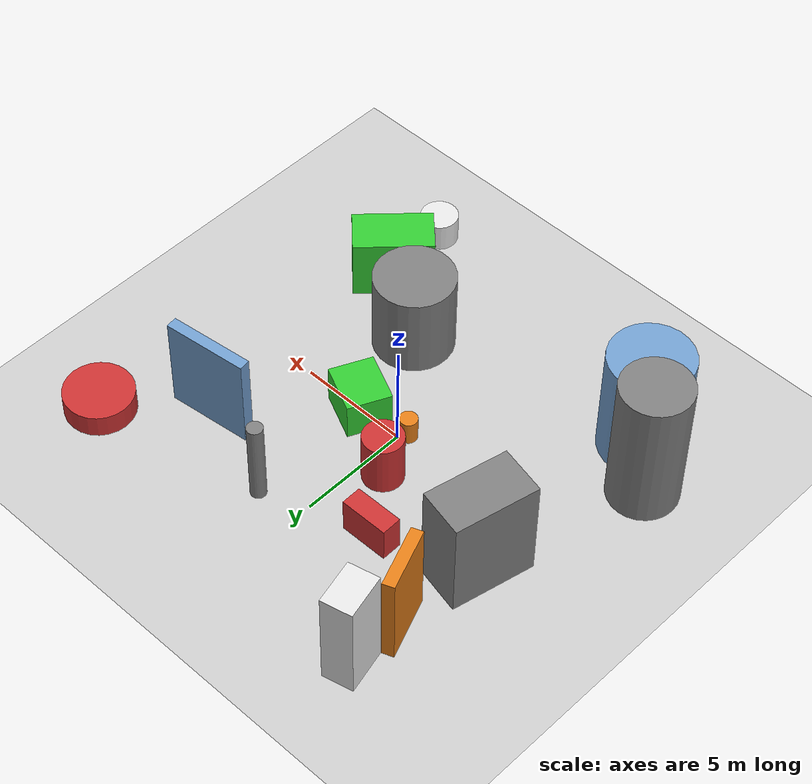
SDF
<?xml version='1.0'?>
<sdf version='1.6'>
  <world name='default'>
    <!-- Sun light -->
    <light name='sun' type='directional'>
      <cast_shadows>1</cast_shadows>
      <pose>0 0 10 0 0 0</pose>
      <diffuse>0.8 0.8 0.8 1</diffuse>
      <specular>0.2 0.2 0.2 1</specular>
      <attenuation>
        <range>1000</range>
        <constant>0.9</constant>
        <linear>0.01</linear>
        <quadratic>0.001</quadratic>
      </attenuation>
      <direction>-0.5 0.1 -0.9</direction>
    </light>

    <!-- Ground plane -->
    <model name='ground_plane'>
      <static>1</static>
      <link name='link'>
        <collision name='collision'>
          <geometry>
            <plane>
              <normal>0 0 1</normal>
              <size>100 100</size>
            </plane>
          </geometry>
          <surface>
            <contact>
              <collide_bitmask>65535</collide_bitmask>
              <ode/>
            </contact>
            <friction>
              <ode>
                <mu>100</mu>
                <mu2>50</mu2>
              </ode>
              <torsional><ode/></torsional>
            </friction>
            <bounce/>
          </surface>
          <max_contacts>10</max_contacts>
        </collision>
        <visual name='visual'>
          <cast_shadows>0</cast_shadows>
          <geometry>
            <plane>
              <normal>0 0 1</normal>
              <size>100 100</size>
            </plane>
          </geometry>
          <material>
            <script>
              <uri>file://media/materials/scripts/gazebo.material</uri>
              <n>Gazebo/Grey</n>
            </script>
          </material>
        </visual>
      </link>
    </model>

    <!-- Environment -->
    <magnetic_field>6e-06 2.3e-05 -4.2e-05</magnetic_field>
    <atmosphere type='adiabatic'/>
    <physics name='default_physics' default='0' type='ode'>
      <gravity>0 0 -9.8</gravity>
      <max_step_size>0.004</max_step_size>
      <real_time_factor>1</real_time_factor>
      <real_time_update_rate>250</real_time_update_rate>
    </physics>
    <scene>
      <ambient>0.4 0.4 0.4 1</ambient>
      <background>0.7 0.7 0.7 1</background>
      <shadows>1</shadows>
    </scene>
    <wind/>
    <spherical_coordinates>
      <surface_model>EARTH_WGS84</surface_model>
      <latitude_deg>0</latitude_deg>
      <longitude_deg>0</longitude_deg>
      <elevation>0</elevation>
      <heading_deg>0</heading_deg>
    </spherical_coordinates>

    <!-- ============ OBSTACLES (15) ============ -->
    <model name='obs_00'>
      <static>1</static>
      <link name='link'>
        <visual name='visual'>
          <geometry>
            <cylinder>
              <radius>0.3946</radius>
              <length>1.1159</length>
            </cylinder>
          </geometry>
          <material>
            <script>
              <n>Gazebo/Orange</n>
              <uri>file://media/materials/scripts/gazebo.material</uri>
            </script>
            <ambient>0.9 0.5 0.1 1</ambient>
          </material>
        </visual>
        <collision name='collision'>
          <geometry>
            <cylinder>
              <radius>0.3946</radius>
              <length>1.1159</length>
            </cylinder>
          </geometry>
          <max_contacts>10</max_contacts>
          <surface>
            <contact><ode/></contact>
            <bounce/>
            <friction>
              <ode><mu>1</mu><mu2>1</mu2></ode>
              <torsional><ode/></torsional>
            </friction>
          </surface>
        </collision>
      </link>
      <pose>-0.2628 -0.3578 0.5580 0 0 1.1882</pose>
    </model>

    <model name='obs_01'>
      <static>1</static>
      <link name='link'>
        <visual name='visual'>
          <geometry>
            <box>
              <size>2.2653 1.9693 1.7478</size>
            </box>
          </geometry>
          <material>
            <script>
              <n>Gazebo/Green</n>
              <uri>file://media/materials/scripts/gazebo.material</uri>
            </script>
            <ambient>0.2 0.8 0.2 1</ambient>
          </material>
        </visual>
        <collision name='collision'>
          <geometry>
            <box>
              <size>2.2653 1.9693 1.7478</size>
            </box>
          </geometry>
          <max_contacts>10</max_contacts>
          <surface>
            <contact><ode/></contact>
            <bounce/>
            <friction>
              <ode><mu>1</mu><mu2>1</mu2></ode>
              <torsional><ode/></torsional>
            </friction>
          </surface>
        </collision>
      </link>
      <pose>2.0842 0.0367 0.8739 0 0 2.7005</pose>
    </model>

    <model name='obs_02'>
      <static>1</static>
      <link name='link'>
        <visual name='visual'>
          <geometry>
            <cylinder>
              <radius>1.8180</radius>
              <length>5.1987</length>
            </cylinder>
          </geometry>
          <material>
            <script>
              <n>Gazebo/Blue</n>
              <uri>file://media/materials/scripts/gazebo.material</uri>
            </script>
            <ambient>0.447 0.624 0.812 1</ambient>
          </material>
        </visual>
        <collision name='collision'>
          <geometry>
            <cylinder>
              <radius>1.8180</radius>
              <length>5.1987</length>
            </cylinder>
          </geometry>
          <max_contacts>10</max_contacts>
          <surface>
            <contact><ode/></contact>
            <bounce/>
            <friction>
              <ode><mu>1</mu><mu2>1</mu2></ode>
              <torsional><ode/></torsional>
            </friction>
          </surface>
        </collision>
      </link>
      <pose>-7.2206 -6.6879 2.5993 0 0 0.5574</pose>
    </model>

    <model name='obs_03'>
      <static>1</static>
      <link name='link'>
        <visual name='visual'>
          <geometry>
            <box>
              <size>0.9113 2.1878 1.6516</size>
            </box>
          </geometry>
          <material>
            <script>
              <n>Gazebo/Red</n>
              <uri>file://media/materials/scripts/gazebo.material</uri>
            </script>
            <ambient>0.8 0.2 0.2 1</ambient>
          </material>
        </visual>
        <collision name='collision'>
          <geometry>
            <box>
              <size>0.9113 2.1878 1.6516</size>
            </box>
          </geometry>
          <max_contacts>10</max_contacts>
          <surface>
            <contact><ode/></contact>
            <bounce/>
            <friction>
              <ode><mu>1</mu><mu2>1</mu2></ode>
              <torsional><ode/></torsional>
            </friction>
          </surface>
        </collision>
      </link>
      <pose>-2.7555 4.3461 0.8258 0 0 1.5813</pose>
    </model>

    <model name='obs_04'>
      <static>1</static>
      <link name='link'>
        <visual name='visual'>
          <geometry>
            <box>
              <size>0.5042 3.7821 4.3928</size>
            </box>
          </geometry>
          <material>
            <script>
              <n>Gazebo/Blue</n>
              <uri>file://media/materials/scripts/gazebo.material</uri>
            </script>
            <ambient>0.447 0.624 0.812 1</ambient>
          </material>
        </visual>
        <collision name='collision'>
          <geometry>
            <box>
              <size>0.5042 3.7821 4.3928</size>
            </box>
          </geometry>
          <max_contacts>10</max_contacts>
          <surface>
            <contact><ode/></contact>
            <bounce/>
            <friction>
              <ode><mu>1</mu><mu2>1</mu2></ode>
              <torsional><ode/></torsional>
            </friction>
          </surface>
        </collision>
      </link>
      <pose>6.2235 4.4051 2.1964 0 0 1.6942</pose>
    </model>

    <model name='obs_05'>
      <static>1</static>
      <link name='link'>
        <visual name='visual'>
          <geometry>
            <cylinder>
              <radius>0.8352</radius>
              <length>1.3041</length>
            </cylinder>
          </geometry>
          <material>
            <script>
              <n>Gazebo/White</n>
              <uri>file://media/materials/scripts/gazebo.material</uri>
            </script>
            <ambient>0.9 0.9 0.9 1</ambient>
          </material>
        </visual>
        <collision name='collision'>
          <geometry>
            <cylinder>
              <radius>0.8352</radius>
              <length>1.3041</length>
            </cylinder>
          </geometry>
          <max_contacts>10</max_contacts>
          <surface>
            <contact><ode/></contact>
            <bounce/>
            <friction>
              <ode><mu>1</mu><mu2>1</mu2></ode>
              <torsional><ode/></torsional>
            </friction>
          </surface>
        </collision>
      </link>
      <pose>6.6673 -9.5511 0.6520 0 0 1.6401</pose>
    </model>

    <model name='obs_06'>
      <static>1</static>
      <link name='link'>
        <visual name='visual'>
          <geometry>
            <box>
              <size>3.7845 2.1874 4.8434</size>
            </box>
          </geometry>
          <material>
            <script>
              <n>Gazebo/Grey</n>
              <uri>file://media/materials/scripts/gazebo.material</uri>
            </script>
            <ambient>0.5 0.5 0.5 1</ambient>
          </material>
        </visual>
        <collision name='collision'>
          <geometry>
            <box>
              <size>3.7845 2.1874 4.8434</size>
            </box>
          </geometry>
          <max_contacts>10</max_contacts>
          <surface>
            <contact><ode/></contact>
            <bounce/>
            <friction>
              <ode><mu>1</mu><mu2>1</mu2></ode>
              <torsional><ode/></torsional>
            </friction>
          </surface>
        </collision>
      </link>
      <pose>-6.7774 2.5908 2.4217 0 0 1.3476</pose>
    </model>

    <model name='obs_07'>
      <static>1</static>
      <link name='link'>
        <visual name='visual'>
          <geometry>
            <cylinder>
              <radius>1.5216</radius>
              <length>6.3308</length>
            </cylinder>
          </geometry>
          <material>
            <script>
              <n>Gazebo/Grey</n>
              <uri>file://media/materials/scripts/gazebo.material</uri>
            </script>
            <ambient>0.5 0.5 0.5 1</ambient>
          </material>
        </visual>
        <collision name='collision'>
          <geometry>
            <cylinder>
              <radius>1.5216</radius>
              <length>6.3308</length>
            </cylinder>
          </geometry>
          <max_contacts>10</max_contacts>
          <surface>
            <contact><ode/></contact>
            <bounce/>
            <friction>
              <ode><mu>1</mu><mu2>1</mu2></ode>
              <torsional><ode/></torsional>
            </friction>
          </surface>
        </collision>
      </link>
      <pose>-8.8818 -4.8348 3.1654 0 0 1.8505</pose>
    </model>

    <model name='obs_08'>
      <static>1</static>
      <link name='link'>
        <visual name='visual'>
          <geometry>
            <box>
              <size>1.9892 1.3908 4.8293</size>
            </box>
          </geometry>
          <material>
            <script>
              <n>Gazebo/White</n>
              <uri>file://media/materials/scripts/gazebo.material</uri>
            </script>
            <ambient>0.9 0.9 0.9 1</ambient>
          </material>
        </visual>
        <collision name='collision'>
          <geometry>
            <box>
              <size>1.9892 1.3908 4.8293</size>
            </box>
          </geometry>
          <max_contacts>10</max_contacts>
          <surface>
            <contact><ode/></contact>
            <bounce/>
            <friction>
              <ode><mu>1</mu><mu2>1</mu2></ode>
              <torsional><ode/></torsional>
            </friction>
          </surface>
        </collision>
      </link>
      <pose>-6.3992 9.1648 2.4146 0 0 1.8099</pose>
    </model>

    <model name='obs_09'>
      <static>1</static>
      <link name='link'>
        <visual name='visual'>
          <geometry>
            <cylinder>
              <radius>1.7720</radius>
              <length>3.8605</length>
            </cylinder>
          </geometry>
          <material>
            <script>
              <n>Gazebo/Grey</n>
              <uri>file://media/materials/scripts/gazebo.material</uri>
            </script>
            <ambient>0.5 0.5 0.5 1</ambient>
          </material>
        </visual>
        <collision name='collision'>
          <geometry>
            <cylinder>
              <radius>1.7720</radius>
              <length>3.8605</length>
            </cylinder>
          </geometry>
          <max_contacts>10</max_contacts>
          <surface>
            <contact><ode/></contact>
            <bounce/>
            <friction>
              <ode><mu>1</mu><mu2>1</mu2></ode>
              <torsional><ode/></torsional>
            </friction>
          </surface>
        </collision>
      </link>
      <pose>3.2349 -4.3309 1.9303 0 0 0.8899</pose>
    </model>

    <model name='obs_10'>
      <static>1</static>
      <link name='link'>
        <visual name='visual'>
          <geometry>
            <cylinder>
              <radius>1.5257</radius>
              <length>1.0498</length>
            </cylinder>
          </geometry>
          <material>
            <script>
              <n>Gazebo/Red</n>
              <uri>file://media/materials/scripts/gazebo.material</uri>
            </script>
            <ambient>0.8 0.2 0.2 1</ambient>
          </material>
        </visual>
        <collision name='collision'>
          <geometry>
            <cylinder>
              <radius>1.5257</radius>
              <length>1.0498</length>
            </cylinder>
          </geometry>
          <max_contacts>10</max_contacts>
          <surface>
            <contact><ode/></contact>
            <bounce/>
            <friction>
              <ode><mu>1</mu><mu2>1</mu2></ode>
              <torsional><ode/></torsional>
            </friction>
          </surface>
        </collision>
      </link>
      <pose>9.8555 7.3460 0.5249 0 0 0.0172</pose>
    </model>

    <model name='obs_11'>
      <static>1</static>
      <link name='link'>
        <visual name='visual'>
          <geometry>
            <box>
              <size>0.5252 2.7909 4.4388</size>
            </box>
          </geometry>
          <material>
            <script>
              <n>Gazebo/Orange</n>
              <uri>file://media/materials/scripts/gazebo.material</uri>
            </script>
            <ambient>0.9 0.5 0.1 1</ambient>
          </material>
        </visual>
        <collision name='collision'>
          <geometry>
            <box>
              <size>0.5252 2.7909 4.4388</size>
            </box>
          </geometry>
          <max_contacts>10</max_contacts>
          <surface>
            <contact><ode/></contact>
            <bounce/>
            <friction>
              <ode><mu>1</mu><mu2>1</mu2></ode>
              <torsional><ode/></torsional>
            </friction>
          </surface>
        </collision>
      </link>
      <pose>-6.5887 6.6073 2.2194 0 0 0.3702</pose>
    </model>

    <model name='obs_12'>
      <static>1</static>
      <link name='link'>
        <visual name='visual'>
          <geometry>
            <cylinder>
              <radius>0.3472</radius>
              <length>3.9825</length>
            </cylinder>
          </geometry>
          <material>
            <script>
              <n>Gazebo/Grey</n>
              <uri>file://media/materials/scripts/gazebo.material</uri>
            </script>
            <ambient>0.5 0.5 0.5 1</ambient>
          </material>
        </visual>
        <collision name='collision'>
          <geometry>
            <cylinder>
              <radius>0.3472</radius>
              <length>3.9825</length>
            </cylinder>
          </geometry>
          <max_contacts>10</max_contacts>
          <surface>
            <contact><ode/></contact>
            <bounce/>
            <friction>
              <ode><mu>1</mu><mu2>1</mu2></ode>
              <torsional><ode/></torsional>
            </friction>
          </surface>
        </collision>
      </link>
      <pose>2.0168 5.8923 1.9913 0 0 1.2844</pose>
    </model>

    <model name='obs_13'>
      <static>1</static>
      <link name='link'>
        <visual name='visual'>
          <geometry>
            <box>
              <size>3.4924 1.9825 2.8282</size>
            </box>
          </geometry>
          <material>
            <script>
              <n>Gazebo/Green</n>
              <uri>file://media/materials/scripts/gazebo.material</uri>
            </script>
            <ambient>0.2 0.8 0.2 1</ambient>
          </material>
        </visual>
        <collision name='collision'>
          <geometry>
            <box>
              <size>3.4924 1.9825 2.8282</size>
            </box>
          </geometry>
          <max_contacts>10</max_contacts>
          <surface>
            <contact><ode/></contact>
            <bounce/>
            <friction>
              <ode><mu>1</mu><mu2>1</mu2></ode>
              <torsional><ode/></torsional>
            </friction>
          </surface>
        </collision>
      </link>
      <pose>6.4091 -6.3623 1.4141 0 0 0.7968</pose>
    </model>

    <model name='obs_14'>
      <static>1</static>
      <link name='link'>
        <visual name='visual'>
          <geometry>
            <cylinder>
              <radius>0.8853</radius>
              <length>2.4259</length>
            </cylinder>
          </geometry>
          <material>
            <script>
              <n>Gazebo/Red</n>
              <uri>file://media/materials/scripts/gazebo.material</uri>
            </script>
            <ambient>0.8 0.2 0.2 1</ambient>
          </material>
        </visual>
        <collision name='collision'>
          <geometry>
            <cylinder>
              <radius>0.8853</radius>
              <length>2.4259</length>
            </cylinder>
          </geometry>
          <max_contacts>10</max_contacts>
          <surface>
            <contact><ode/></contact>
            <bounce/>
            <friction>
              <ode><mu>1</mu><mu2>1</mu2></ode>
              <torsional><ode/></torsional>
            </friction>
          </surface>
        </collision>
      </link>
      <pose>-0.9306 1.8119 1.2129 0 0 3.1158</pose>
    </model>

    <!-- GUI camera -->
    <gui fullscreen='0'>
      <camera name='user_camera'>
        <pose>-15 0 18 0 0.85 0.15</pose>
        <view_controller>orbit</view_controller>
        <projection_type>perspective</projection_type>
      </camera>
    </gui>
  </world>
</sdf>
